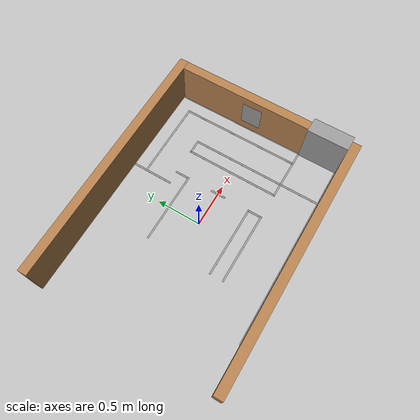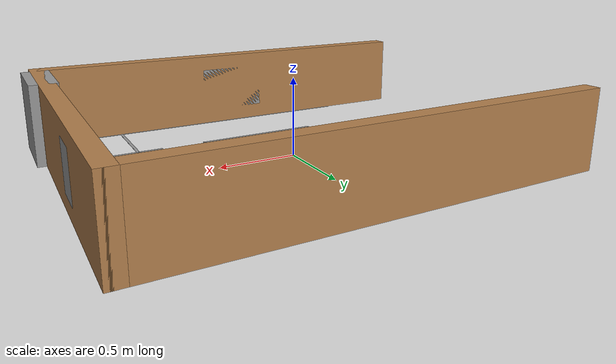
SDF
<sdf version="1.6">
 <model name="Map_2.0_0">
  <link name="Door_4">
   <pose>1.37 -0.75 0 0 -0 1.57314</pose>
   <visual name="Door_4_Visual">
    <pose>0 0 0.25 0 -0 0</pose>
    <geometry><box><size>0.45 0.17 0.5</size></box></geometry>
    <material>
     <script><uri>file://media/materials/scripts/gazebo.material</uri><name>Gazebo/Grey</name></script>
     <shader type="pixel"/>
     <ambient>0.3 0.3 0.3 1</ambient>
     <diffuse>0.7 0.7 0.7 1</diffuse>
     <specular>0.01 0.01 0.01 1</specular>
     <emissive>0 0 0 1</emissive>
    </material>
   </visual>
   <collision name="Door_4_Collision">
    <pose>0 0 0.25 0 -0 0</pose>
    <geometry><box><size>0.45 0.17 0.5</size></box></geometry>
    <surface>
     <friction>
      <ode><mu>1</mu><mu2>1</mu2><fdir1>0 0 0</fdir1><slip1>0</slip1><slip2>0</slip2></ode>
      <torsional>
       <coefficient>1</coefficient>
       <patch_radius>0</patch_radius>
       <surface_radius>0</surface_radius>
       <use_patch_radius>1</use_patch_radius>
       <ode><slip>0</slip></ode>
      </torsional>
     </friction>
     <bounce><restitution_coefficient>0</restitution_coefficient><threshold>1e+06</threshold></bounce>
     <contact>
      <collide_without_contact>0</collide_without_contact>
      <collide_without_contact_bitmask>1</collide_without_contact_bitmask>
      <collide_bitmask>1</collide_bitmask>
      <ode>
       <soft_cfm>0</soft_cfm>
       <soft_erp>0.2</soft_erp>
       <kp>1e+13</kp>
       <kd>1</kd>
       <max_vel>0.01</max_vel>
       <min_depth>0</min_depth>
      </ode>
      <bullet>
       <split_impulse>1</split_impulse>
       <split_impulse_penetration_threshold>-0.01</split_impulse_penetration_threshold>
       <soft_cfm>0</soft_cfm>
       <soft_erp>0.2</soft_erp>
       <kp>1e+13</kp>
       <kd>1</kd>
      </bullet>
     </contact>
    </surface>
   </collision>
  </link>
  <link name="Wall_27">
   <pose>0.225 -0.975 0 0 -0 0</pose>
   <visual name="Wall_27_Visual">
    <geometry><box><size>2.17 0.02 0.001</size></box></geometry>
    <material>
     <script><uri>file://media/materials/scripts/gazebo.material</uri><name>Gazebo/Grey</name></script>
     <ambient>1 1 1 1</ambient>
     <shader type="pixel"/>
     <diffuse>0.7 0.7 0.7 1</diffuse>
     <specular>0.01 0.01 0.01 1</specular>
     <emissive>0 0 0 1</emissive>
    </material>
    <meta><layer>0</layer></meta>
   </visual>
   <collision name="Wall_27_Collision">
    <geometry><box><size>2.17 0.02 0.001</size></box></geometry>
    <surface>
     <friction>
      <ode><mu>1</mu><mu2>1</mu2><fdir1>0 0 0</fdir1><slip1>0</slip1><slip2>0</slip2></ode>
      <torsional>
       <coefficient>1</coefficient>
       <patch_radius>0</patch_radius>
       <surface_radius>0</surface_radius>
       <use_patch_radius>1</use_patch_radius>
       <ode><slip>0</slip></ode>
      </torsional>
     </friction>
     <bounce><restitution_coefficient>0</restitution_coefficient><threshold>1e+06</threshold></bounce>
     <contact>
      <collide_without_contact>0</collide_without_contact>
      <collide_without_contact_bitmask>1</collide_without_contact_bitmask>
      <collide_bitmask>1</collide_bitmask>
      <ode>
       <soft_cfm>0</soft_cfm>
       <soft_erp>0.2</soft_erp>
       <kp>1e+13</kp>
       <kd>1</kd>
       <max_vel>0.01</max_vel>
       <min_depth>0</min_depth>
      </ode>
      <bullet>
       <split_impulse>1</split_impulse>
       <split_impulse_penetration_threshold>-0.01</split_impulse_penetration_threshold>
       <soft_cfm>0</soft_cfm>
       <soft_erp>0.2</soft_erp>
       <kp>1e+13</kp>
       <kd>1</kd>
      </bullet>
     </contact>
    </surface>
   </collision>
  </link>
  <link name="Wall_39">
   <pose>0.4 0.45 0 0 0 -1.5708</pose>
   <visual name="Wall_39_Visual">
    <geometry><box><size>0.17 0.02 0.001</size></box></geometry>
    <material>
     <script><uri>file://media/materials/scripts/gazebo.material</uri><name>Gazebo/Grey</name></script>
     <ambient>1 1 1 1</ambient>
     <shader type="pixel"/>
     <diffuse>0.7 0.7 0.7 1</diffuse>
     <specular>0.01 0.01 0.01 1</specular>
     <emissive>0 0 0 1</emissive>
    </material>
    <meta><layer>0</layer></meta>
   </visual>
   <collision name="Wall_39_Collision">
    <geometry><box><size>0.17 0.02 0.001</size></box></geometry>
    <surface>
     <friction>
      <ode><mu>1</mu><mu2>1</mu2><fdir1>0 0 0</fdir1><slip1>0</slip1><slip2>0</slip2></ode>
      <torsional>
       <coefficient>1</coefficient>
       <patch_radius>0</patch_radius>
       <surface_radius>0</surface_radius>
       <use_patch_radius>1</use_patch_radius>
       <ode><slip>0</slip></ode>
      </torsional>
     </friction>
     <bounce><restitution_coefficient>0</restitution_coefficient><threshold>1e+06</threshold></bounce>
     <contact>
      <collide_without_contact>0</collide_without_contact>
      <collide_without_contact_bitmask>1</collide_without_contact_bitmask>
      <collide_bitmask>1</collide_bitmask>
      <ode>
       <soft_cfm>0</soft_cfm>
       <soft_erp>0.2</soft_erp>
       <kp>1e+13</kp>
       <kd>1</kd>
       <max_vel>0.01</max_vel>
       <min_depth>0</min_depth>
      </ode>
      <bullet>
       <split_impulse>1</split_impulse>
       <split_impulse_penetration_threshold>-0.01</split_impulse_penetration_threshold>
       <soft_cfm>0</soft_cfm>
       <soft_erp>0.2</soft_erp>
       <kp>1e+13</kp>
       <kd>1</kd>
      </bullet>
     </contact>
    </surface>
   </collision>
  </link>
  <link name="Wall_47">
   <pose>0 0.375 0 0 -0 0</pose>
   <visual name="Wall_47_Visual">
    <geometry><box><size>0.82 0.02 0.001</size></box></geometry>
    <material>
     <script><uri>file://media/materials/scripts/gazebo.material</uri><name>Gazebo/Grey</name></script>
     <ambient>1 1 1 1</ambient>
     <shader type="pixel"/>
     <diffuse>0.7 0.7 0.7 1</diffuse>
     <specular>0.01 0.01 0.01 1</specular>
     <emissive>0 0 0 1</emissive>
    </material>
    <meta><layer>0</layer></meta>
   </visual>
   <collision name="Wall_47_Collision">
    <geometry><box><size>0.82 0.02 0.001</size></box></geometry>
    <surface>
     <friction>
      <ode><mu>1</mu><mu2>1</mu2><fdir1>0 0 0</fdir1><slip1>0</slip1><slip2>0</slip2></ode>
      <torsional>
       <coefficient>1</coefficient>
       <patch_radius>0</patch_radius>
       <surface_radius>0</surface_radius>
       <use_patch_radius>1</use_patch_radius>
       <ode><slip>0</slip></ode>
      </torsional>
     </friction>
     <bounce><restitution_coefficient>0</restitution_coefficient><threshold>1e+06</threshold></bounce>
     <contact>
      <collide_without_contact>0</collide_without_contact>
      <collide_without_contact_bitmask>1</collide_without_contact_bitmask>
      <collide_bitmask>1</collide_bitmask>
      <ode>
       <soft_cfm>0</soft_cfm>
       <soft_erp>0.2</soft_erp>
       <kp>1e+13</kp>
       <kd>1</kd>
       <max_vel>0.01</max_vel>
       <min_depth>0</min_depth>
      </ode>
      <bullet>
       <split_impulse>1</split_impulse>
       <split_impulse_penetration_threshold>-0.01</split_impulse_penetration_threshold>
       <soft_cfm>0</soft_cfm>
       <soft_erp>0.2</soft_erp>
       <kp>1e+13</kp>
       <kd>1</kd>
      </bullet>
     </contact>
    </surface>
   </collision>
  </link>
  <link name="Wall_51">
   <pose>0.4 0 0 0 0 -1.5708</pose>
   <visual name="Wall_51_Visual">
    <geometry><box><size>0.17 0.02 0.001</size></box></geometry>
    <material>
     <script><uri>file://media/materials/scripts/gazebo.material</uri><name>Gazebo/Grey</name></script>
     <ambient>1 1 1 1</ambient>
     <shader type="pixel"/>
     <diffuse>0.7 0.7 0.7 1</diffuse>
     <specular>0.01 0.01 0.01 1</specular>
     <emissive>0 0 0 1</emissive>
    </material>
    <meta><layer>0</layer></meta>
   </visual>
   <collision name="Wall_51_Collision">
    <geometry><box><size>0.17 0.02 0.001</size></box></geometry>
    <surface>
     <friction>
      <ode><mu>1</mu><mu2>1</mu2><fdir1>0 0 0</fdir1><slip1>0</slip1><slip2>0</slip2></ode>
      <torsional>
       <coefficient>1</coefficient>
       <patch_radius>0</patch_radius>
       <surface_radius>0</surface_radius>
       <use_patch_radius>1</use_patch_radius>
       <ode><slip>0</slip></ode>
      </torsional>
     </friction>
     <bounce><restitution_coefficient>0</restitution_coefficient><threshold>1e+06</threshold></bounce>
     <contact>
      <collide_without_contact>0</collide_without_contact>
      <collide_without_contact_bitmask>1</collide_without_contact_bitmask>
      <collide_bitmask>1</collide_bitmask>
      <ode>
       <soft_cfm>0</soft_cfm>
       <soft_erp>0.2</soft_erp>
       <kp>1e+13</kp>
       <kd>1</kd>
       <max_vel>0.01</max_vel>
       <min_depth>0</min_depth>
      </ode>
      <bullet>
       <split_impulse>1</split_impulse>
       <split_impulse_penetration_threshold>-0.01</split_impulse_penetration_threshold>
       <soft_cfm>0</soft_cfm>
       <soft_erp>0.2</soft_erp>
       <kp>1e+13</kp>
       <kd>1</kd>
      </bullet>
     </contact>
    </surface>
   </collision>
  </link>
  <link name="Wall_53">
   <pose>0 -0.375 0 0 -0 0</pose>
   <visual name="Wall_53_Visual">
    <geometry><box><size>0.82 0.02 0.001</size></box></geometry>
    <material>
     <script><uri>file://media/materials/scripts/gazebo.material</uri><name>Gazebo/Grey</name></script>
     <ambient>1 1 1 1</ambient>
     <shader type="pixel"/>
     <diffuse>0.7 0.7 0.7 1</diffuse>
     <specular>0.01 0.01 0.01 1</specular>
     <emissive>0 0 0 1</emissive>
    </material>
    <meta><layer>0</layer></meta>
   </visual>
   <collision name="Wall_53_Collision">
    <geometry><box><size>0.82 0.02 0.001</size></box></geometry>
    <surface>
     <friction>
      <ode><mu>1</mu><mu2>1</mu2><fdir1>0 0 0</fdir1><slip1>0</slip1><slip2>0</slip2></ode>
      <torsional>
       <coefficient>1</coefficient>
       <patch_radius>0</patch_radius>
       <surface_radius>0</surface_radius>
       <use_patch_radius>1</use_patch_radius>
       <ode><slip>0</slip></ode>
      </torsional>
     </friction>
     <bounce><restitution_coefficient>0</restitution_coefficient><threshold>1e+06</threshold></bounce>
     <contact>
      <collide_without_contact>0</collide_without_contact>
      <collide_without_contact_bitmask>1</collide_without_contact_bitmask>
      <collide_bitmask>1</collide_bitmask>
      <ode>
       <soft_cfm>0</soft_cfm>
       <soft_erp>0.2</soft_erp>
       <kp>1e+13</kp>
       <kd>1</kd>
       <max_vel>0.01</max_vel>
       <min_depth>0</min_depth>
      </ode>
      <bullet>
       <split_impulse>1</split_impulse>
       <split_impulse_penetration_threshold>-0.01</split_impulse_penetration_threshold>
       <soft_cfm>0</soft_cfm>
       <soft_erp>0.2</soft_erp>
       <kp>1e+13</kp>
       <kd>1</kd>
      </bullet>
     </contact>
    </surface>
   </collision>
  </link>
  <link name="Wall_55">
   <pose>0 -0.525 0 0 -0 0</pose>
   <visual name="Wall_55_Visual">
    <geometry><box><size>0.82 0.02 0.001</size></box></geometry>
    <material>
     <script><uri>file://media/materials/scripts/gazebo.material</uri><name>Gazebo/Grey</name></script>
     <ambient>1 1 1 1</ambient>
     <shader type="pixel"/>
     <diffuse>0.7 0.7 0.7 1</diffuse>
     <specular>0.01 0.01 0.01 1</specular>
     <emissive>0 0 0 1</emissive>
    </material>
    <meta><layer>0</layer></meta>
   </visual>
   <collision name="Wall_55_Collision">
    <geometry><box><size>0.82 0.02 0.001</size></box></geometry>
    <surface>
     <friction>
      <ode><mu>1</mu><mu2>1</mu2><fdir1>0 0 0</fdir1><slip1>0</slip1><slip2>0</slip2></ode>
      <torsional>
       <coefficient>1</coefficient>
       <patch_radius>0</patch_radius>
       <surface_radius>0</surface_radius>
       <use_patch_radius>1</use_patch_radius>
       <ode><slip>0</slip></ode>
      </torsional>
     </friction>
     <bounce><restitution_coefficient>0</restitution_coefficient><threshold>1e+06</threshold></bounce>
     <contact>
      <collide_without_contact>0</collide_without_contact>
      <collide_without_contact_bitmask>1</collide_without_contact_bitmask>
      <collide_bitmask>1</collide_bitmask>
      <ode>
       <soft_cfm>0</soft_cfm>
       <soft_erp>0.2</soft_erp>
       <kp>1e+13</kp>
       <kd>1</kd>
       <max_vel>0.01</max_vel>
       <min_depth>0</min_depth>
      </ode>
      <bullet>
       <split_impulse>1</split_impulse>
       <split_impulse_penetration_threshold>-0.01</split_impulse_penetration_threshold>
       <soft_cfm>0</soft_cfm>
       <soft_erp>0.2</soft_erp>
       <kp>1e+13</kp>
       <kd>1</kd>
      </bullet>
     </contact>
    </surface>
   </collision>
  </link>
  <link name="Wall_59">
   <pose>0.4 -0.45 0 0 0 -1.5708</pose>
   <visual name="Wall_59_Visual">
    <geometry><box><size>0.17 0.02 0.001</size></box></geometry>
    <material>
     <script><uri>file://media/materials/scripts/gazebo.material</uri><name>Gazebo/Grey</name></script>
     <ambient>1 1 1 1</ambient>
     <shader type="pixel"/>
     <diffuse>0.7 0.7 0.7 1</diffuse>
     <specular>0.01 0.01 0.01 1</specular>
     <emissive>0 0 0 1</emissive>
    </material>
    <meta><layer>0</layer></meta>
   </visual>
   <collision name="Wall_59_Collision">
    <geometry><box><size>0.17 0.02 0.001</size></box></geometry>
    <surface>
     <friction>
      <ode><mu>1</mu><mu2>1</mu2><fdir1>0 0 0</fdir1><slip1>0</slip1><slip2>0</slip2></ode>
      <torsional>
       <coefficient>1</coefficient>
       <patch_radius>0</patch_radius>
       <surface_radius>0</surface_radius>
       <use_patch_radius>1</use_patch_radius>
       <ode><slip>0</slip></ode>
      </torsional>
     </friction>
     <bounce><restitution_coefficient>0</restitution_coefficient><threshold>1e+06</threshold></bounce>
     <contact>
      <collide_without_contact>0</collide_without_contact>
      <collide_without_contact_bitmask>1</collide_without_contact_bitmask>
      <collide_bitmask>1</collide_bitmask>
      <ode>
       <soft_cfm>0</soft_cfm>
       <soft_erp>0.2</soft_erp>
       <kp>1e+13</kp>
       <kd>1</kd>
       <max_vel>0.01</max_vel>
       <min_depth>0</min_depth>
      </ode>
      <bullet>
       <split_impulse>1</split_impulse>
       <split_impulse_penetration_threshold>-0.01</split_impulse_penetration_threshold>
       <soft_cfm>0</soft_cfm>
       <soft_erp>0.2</soft_erp>
       <kp>1e+13</kp>
       <kd>1</kd>
      </bullet>
     </contact>
    </surface>
   </collision>
  </link>
  <link name="Wall_61">
   <pose>1.3 0 0 0 0 -1.5708</pose>
   <visual name="Wall_61_Visual">
    <geometry><box><size>1.97 0.02 0.001</size></box></geometry>
    <material>
     <script><uri>file://media/materials/scripts/gazebo.material</uri><name>Gazebo/Grey</name></script>
     <ambient>1 1 1 1</ambient>
     <shader type="pixel"/>
     <diffuse>0.7 0.7 0.7 1</diffuse>
     <specular>0.01 0.01 0.01 1</specular>
     <emissive>0 0 0 1</emissive>
    </material>
    <meta><layer>0</layer></meta>
   </visual>
   <collision name="Wall_61_Collision">
    <geometry><box><size>1.97 0.02 0.001</size></box></geometry>
    <surface>
     <friction>
      <ode><mu>1</mu><mu2>1</mu2><fdir1>0 0 0</fdir1><slip1>0</slip1><slip2>0</slip2></ode>
      <torsional>
       <coefficient>1</coefficient>
       <patch_radius>0</patch_radius>
       <surface_radius>0</surface_radius>
       <use_patch_radius>1</use_patch_radius>
       <ode><slip>0</slip></ode>
      </torsional>
     </friction>
     <bounce><restitution_coefficient>0</restitution_coefficient><threshold>1e+06</threshold></bounce>
     <contact>
      <collide_without_contact>0</collide_without_contact>
      <collide_without_contact_bitmask>1</collide_without_contact_bitmask>
      <collide_bitmask>1</collide_bitmask>
      <ode>
       <soft_cfm>0</soft_cfm>
       <soft_erp>0.2</soft_erp>
       <kp>1e+13</kp>
       <kd>1</kd>
       <max_vel>0.01</max_vel>
       <min_depth>0</min_depth>
      </ode>
      <bullet>
       <split_impulse>1</split_impulse>
       <split_impulse_penetration_threshold>-0.01</split_impulse_penetration_threshold>
       <soft_cfm>0</soft_cfm>
       <soft_erp>0.2</soft_erp>
       <kp>1e+13</kp>
       <kd>1</kd>
      </bullet>
     </contact>
    </surface>
   </collision>
  </link>
  <link name="Wall_63">
   <pose>0.25 0.75 0 0 0 -1.5708</pose>
   <visual name="Wall_63_Visual">
    <geometry><box><size>0.47 0.02 0.001</size></box></geometry>
    <material>
     <script><uri>file://media/materials/scripts/gazebo.material</uri><name>Gazebo/Grey</name></script>
     <ambient>1 1 1 1</ambient>
     <shader type="pixel"/>
     <diffuse>0.7 0.7 0.7 1</diffuse>
     <specular>0.01 0.01 0.01 1</specular>
     <emissive>0 0 0 1</emissive>
    </material>
    <meta><layer>0</layer></meta>
   </visual>
   <collision name="Wall_63_Collision">
    <geometry><box><size>0.47 0.02 0.001</size></box></geometry>
    <surface>
     <friction>
      <ode><mu>1</mu><mu2>1</mu2><fdir1>0 0 0</fdir1><slip1>0</slip1><slip2>0</slip2></ode>
      <torsional>
       <coefficient>1</coefficient>
       <patch_radius>0</patch_radius>
       <surface_radius>0</surface_radius>
       <use_patch_radius>1</use_patch_radius>
       <ode><slip>0</slip></ode>
      </torsional>
     </friction>
     <bounce><restitution_coefficient>0</restitution_coefficient><threshold>1e+06</threshold></bounce>
     <contact>
      <collide_without_contact>0</collide_without_contact>
      <collide_without_contact_bitmask>1</collide_without_contact_bitmask>
      <collide_bitmask>1</collide_bitmask>
      <ode>
       <soft_cfm>0</soft_cfm>
       <soft_erp>0.2</soft_erp>
       <kp>1e+13</kp>
       <kd>1</kd>
       <max_vel>0.01</max_vel>
       <min_depth>0</min_depth>
      </ode>
      <bullet>
       <split_impulse>1</split_impulse>
       <split_impulse_penetration_threshold>-0.01</split_impulse_penetration_threshold>
       <soft_cfm>0</soft_cfm>
       <soft_erp>0.2</soft_erp>
       <kp>1e+13</kp>
       <kd>1</kd>
      </bullet>
     </contact>
    </surface>
   </collision>
  </link>
  <link name="Wall_65">
   <pose>0.7 0.825 0 0 -0 0</pose>
   <visual name="Wall_65_Visual">
    <geometry><box><size>0.92 0.02 0.001</size></box></geometry>
    <material>
     <script><uri>file://media/materials/scripts/gazebo.material</uri><name>Gazebo/Grey</name></script>
     <ambient>1 1 1 1</ambient>
     <shader type="pixel"/>
     <diffuse>0.7 0.7 0.7 1</diffuse>
     <specular>0.01 0.01 0.01 1</specular>
     <emissive>0 0 0 1</emissive>
    </material>
    <meta><layer>0</layer></meta>
   </visual>
   <collision name="Wall_65_Collision">
    <geometry><box><size>0.92 0.02 0.001</size></box></geometry>
    <surface>
     <friction>
      <ode><mu>1</mu><mu2>1</mu2><fdir1>0 0 0</fdir1><slip1>0</slip1><slip2>0</slip2></ode>
      <torsional>
       <coefficient>1</coefficient>
       <patch_radius>0</patch_radius>
       <surface_radius>0</surface_radius>
       <use_patch_radius>1</use_patch_radius>
       <ode><slip>0</slip></ode>
      </torsional>
     </friction>
     <bounce><restitution_coefficient>0</restitution_coefficient><threshold>1e+06</threshold></bounce>
     <contact>
      <collide_without_contact>0</collide_without_contact>
      <collide_without_contact_bitmask>1</collide_without_contact_bitmask>
      <collide_bitmask>1</collide_bitmask>
      <ode>
       <soft_cfm>0</soft_cfm>
       <soft_erp>0.2</soft_erp>
       <kp>1e+13</kp>
       <kd>1</kd>
       <max_vel>0.01</max_vel>
       <min_depth>0</min_depth>
      </ode>
      <bullet>
       <split_impulse>1</split_impulse>
       <split_impulse_penetration_threshold>-0.01</split_impulse_penetration_threshold>
       <soft_cfm>0</soft_cfm>
       <soft_erp>0.2</soft_erp>
       <kp>1e+13</kp>
       <kd>1</kd>
      </bullet>
     </contact>
    </surface>
   </collision>
  </link>
  <link name="Wall_67">
   <pose>1.15 0.15 0 0 0 -1.5708</pose>
   <visual name="Wall_67_Visual">
    <geometry><box><size>1.37 0.02 0.001</size></box></geometry>
    <material>
     <script><uri>file://media/materials/scripts/gazebo.material</uri><name>Gazebo/Grey</name></script>
     <ambient>1 1 1 1</ambient>
     <shader type="pixel"/>
     <diffuse>0.7 0.7 0.7 1</diffuse>
     <specular>0.01 0.01 0.01 1</specular>
     <emissive>0 0 0 1</emissive>
    </material>
    <meta><layer>0</layer></meta>
   </visual>
   <collision name="Wall_67_Collision">
    <geometry><box><size>1.37 0.02 0.001</size></box></geometry>
    <surface>
     <friction>
      <ode><mu>1</mu><mu2>1</mu2><fdir1>0 0 0</fdir1><slip1>0</slip1><slip2>0</slip2></ode>
      <torsional>
       <coefficient>1</coefficient>
       <patch_radius>0</patch_radius>
       <surface_radius>0</surface_radius>
       <use_patch_radius>1</use_patch_radius>
       <ode><slip>0</slip></ode>
      </torsional>
     </friction>
     <bounce><restitution_coefficient>0</restitution_coefficient><threshold>1e+06</threshold></bounce>
     <contact>
      <collide_without_contact>0</collide_without_contact>
      <collide_without_contact_bitmask>1</collide_without_contact_bitmask>
      <collide_bitmask>1</collide_bitmask>
      <ode>
       <soft_cfm>0</soft_cfm>
       <soft_erp>0.2</soft_erp>
       <kp>1e+13</kp>
       <kd>1</kd>
       <max_vel>0.01</max_vel>
       <min_depth>0</min_depth>
      </ode>
      <bullet>
       <split_impulse>1</split_impulse>
       <split_impulse_penetration_threshold>-0.01</split_impulse_penetration_threshold>
       <soft_cfm>0</soft_cfm>
       <soft_erp>0.2</soft_erp>
       <kp>1e+13</kp>
       <kd>1</kd>
      </bullet>
     </contact>
    </surface>
   </collision>
  </link>
  <link name="Wall_69">
   <pose>0.85 -0.75 0 0 -0 1.5708</pose>
   <visual name="Wall_69_Visual">
    <geometry><box><size>0.47 0.02 0.001</size></box></geometry>
    <material>
     <script><uri>file://media/materials/scripts/gazebo.material</uri><name>Gazebo/Grey</name></script>
     <ambient>1 1 1 1</ambient>
     <shader type="pixel"/>
     <diffuse>0.7 0.7 0.7 1</diffuse>
     <specular>0.01 0.01 0.01 1</specular>
     <emissive>0 0 0 1</emissive>
    </material>
    <meta><layer>0</layer></meta>
   </visual>
   <collision name="Wall_69_Collision">
    <geometry><box><size>0.47 0.02 0.001</size></box></geometry>
    <surface>
     <friction>
      <ode><mu>1</mu><mu2>1</mu2><fdir1>0 0 0</fdir1><slip1>0</slip1><slip2>0</slip2></ode>
      <torsional>
       <coefficient>1</coefficient>
       <patch_radius>0</patch_radius>
       <surface_radius>0</surface_radius>
       <use_patch_radius>1</use_patch_radius>
       <ode><slip>0</slip></ode>
      </torsional>
     </friction>
     <bounce><restitution_coefficient>0</restitution_coefficient><threshold>1e+06</threshold></bounce>
     <contact>
      <collide_without_contact>0</collide_without_contact>
      <collide_without_contact_bitmask>1</collide_without_contact_bitmask>
      <collide_bitmask>1</collide_bitmask>
      <ode>
       <soft_cfm>0</soft_cfm>
       <soft_erp>0.2</soft_erp>
       <kp>1e+13</kp>
       <kd>1</kd>
       <max_vel>0.01</max_vel>
       <min_depth>0</min_depth>
      </ode>
      <bullet>
       <split_impulse>1</split_impulse>
       <split_impulse_penetration_threshold>-0.01</split_impulse_penetration_threshold>
       <soft_cfm>0</soft_cfm>
       <soft_erp>0.2</soft_erp>
       <kp>1e+13</kp>
       <kd>1</kd>
      </bullet>
     </contact>
    </surface>
   </collision>
  </link>
  <link name="Wall_73">
   <pose>1.075 -0.525 0 0 -0 0</pose>
   <visual name="Wall_73_Visual">
    <geometry><box><size>0.47 0.02 0.001</size></box></geometry>
    <material>
     <script><uri>file://media/materials/scripts/gazebo.material</uri><name>Gazebo/Grey</name></script>
     <ambient>1 1 1 1</ambient>
     <shader type="pixel"/>
     <diffuse>0.7 0.7 0.7 1</diffuse>
     <specular>0.01 0.01 0.01 1</specular>
     <emissive>0 0 0 1</emissive>
    </material>
    <meta><layer>0</layer></meta>
   </visual>
   <collision name="Wall_73_Collision">
    <geometry><box><size>0.47 0.02 0.001</size></box></geometry>
    <surface>
     <friction>
      <ode><mu>1</mu><mu2>1</mu2><fdir1>0 0 0</fdir1><slip1>0</slip1><slip2>0</slip2></ode>
      <torsional>
       <coefficient>1</coefficient>
       <patch_radius>0</patch_radius>
       <surface_radius>0</surface_radius>
       <use_patch_radius>1</use_patch_radius>
       <ode><slip>0</slip></ode>
      </torsional>
     </friction>
     <bounce><restitution_coefficient>0</restitution_coefficient><threshold>1e+06</threshold></bounce>
     <contact>
      <collide_without_contact>0</collide_without_contact>
      <collide_without_contact_bitmask>1</collide_without_contact_bitmask>
      <collide_bitmask>1</collide_bitmask>
      <ode>
       <soft_cfm>0</soft_cfm>
       <soft_erp>0.2</soft_erp>
       <kp>1e+13</kp>
       <kd>1</kd>
       <max_vel>0.01</max_vel>
       <min_depth>0</min_depth>
      </ode>
      <bullet>
       <split_impulse>1</split_impulse>
       <split_impulse_penetration_threshold>-0.01</split_impulse_penetration_threshold>
       <soft_cfm>0</soft_cfm>
       <soft_erp>0.2</soft_erp>
       <kp>1e+13</kp>
       <kd>1</kd>
      </bullet>
     </contact>
    </surface>
   </collision>
  </link>
  <link name="Wall_75">
   <pose>0.7 0 0 0 0 -1.5708</pose>
   <visual name="Wall_75_Visual">
    <geometry><box><size>1.07 0.02 0.001</size></box></geometry>
    <material>
     <script><uri>file://media/materials/scripts/gazebo.material</uri><name>Gazebo/Grey</name></script>
     <ambient>1 1 1 1</ambient>
     <shader type="pixel"/>
     <diffuse>0.7 0.7 0.7 1</diffuse>
     <specular>0.01 0.01 0.01 1</specular>
     <emissive>0 0 0 1</emissive>
    </material>
    <meta><layer>0</layer></meta>
   </visual>
   <collision name="Wall_75_Collision">
    <geometry><box><size>1.07 0.02 0.001</size></box></geometry>
    <surface>
     <friction>
      <ode><mu>1</mu><mu2>1</mu2><fdir1>0 0 0</fdir1><slip1>0</slip1><slip2>0</slip2></ode>
      <torsional>
       <coefficient>1</coefficient>
       <patch_radius>0</patch_radius>
       <surface_radius>0</surface_radius>
       <use_patch_radius>1</use_patch_radius>
       <ode><slip>0</slip></ode>
      </torsional>
     </friction>
     <bounce><restitution_coefficient>0</restitution_coefficient><threshold>1e+06</threshold></bounce>
     <contact>
      <collide_without_contact>0</collide_without_contact>
      <collide_without_contact_bitmask>1</collide_without_contact_bitmask>
      <collide_bitmask>1</collide_bitmask>
      <ode>
       <soft_cfm>0</soft_cfm>
       <soft_erp>0.2</soft_erp>
       <kp>1e+13</kp>
       <kd>1</kd>
       <max_vel>0.01</max_vel>
       <min_depth>0</min_depth>
      </ode>
      <bullet>
       <split_impulse>1</split_impulse>
       <split_impulse_penetration_threshold>-0.01</split_impulse_penetration_threshold>
       <soft_cfm>0</soft_cfm>
       <soft_erp>0.2</soft_erp>
       <kp>1e+13</kp>
       <kd>1</kd>
      </bullet>
     </contact>
    </surface>
   </collision>
  </link>
  <link name="Wall_77">
   <pose>0.85 0 0 0 0 -1.5708</pose>
   <visual name="Wall_77_Visual">
    <geometry><box><size>1.07 0.02 0.001</size></box></geometry>
    <material>
     <script><uri>file://media/materials/scripts/gazebo.material</uri><name>Gazebo/Grey</name></script>
     <ambient>1 1 1 1</ambient>
     <shader type="pixel"/>
     <diffuse>0.7 0.7 0.7 1</diffuse>
     <specular>0.01 0.01 0.01 1</specular>
     <emissive>0 0 0 1</emissive>
    </material>
    <meta><layer>0</layer></meta>
   </visual>
   <collision name="Wall_77_Collision">
    <geometry><box><size>1.07 0.02 0.001</size></box></geometry>
    <surface>
     <friction>
      <ode><mu>1</mu><mu2>1</mu2><fdir1>0 0 0</fdir1><slip1>0</slip1><slip2>0</slip2></ode>
      <torsional>
       <coefficient>1</coefficient>
       <patch_radius>0</patch_radius>
       <surface_radius>0</surface_radius>
       <use_patch_radius>1</use_patch_radius>
       <ode><slip>0</slip></ode>
      </torsional>
     </friction>
     <bounce><restitution_coefficient>0</restitution_coefficient><threshold>1e+06</threshold></bounce>
     <contact>
      <collide_without_contact>0</collide_without_contact>
      <collide_without_contact_bitmask>1</collide_without_contact_bitmask>
      <collide_bitmask>1</collide_bitmask>
      <ode>
       <soft_cfm>0</soft_cfm>
       <soft_erp>0.2</soft_erp>
       <kp>1e+13</kp>
       <kd>1</kd>
       <max_vel>0.01</max_vel>
       <min_depth>0</min_depth>
      </ode>
      <bullet>
       <split_impulse>1</split_impulse>
       <split_impulse_penetration_threshold>-0.01</split_impulse_penetration_threshold>
       <soft_cfm>0</soft_cfm>
       <soft_erp>0.2</soft_erp>
       <kp>1e+13</kp>
       <kd>1</kd>
      </bullet>
     </contact>
    </surface>
   </collision>
  </link>
  <link name="Wall_79">
   <pose>0.775 0.525 0 0 -0 0</pose>
   <visual name="Wall_79_Visual">
    <geometry><box><size>0.17 0.02 0.001</size></box></geometry>
    <material>
     <script><uri>file://media/materials/scripts/gazebo.material</uri><name>Gazebo/Grey</name></script>
     <ambient>1 1 1 1</ambient>
     <shader type="pixel"/>
     <diffuse>0.7 0.7 0.7 1</diffuse>
     <specular>0.01 0.01 0.01 1</specular>
     <emissive>0 0 0 1</emissive>
    </material>
    <meta><layer>0</layer></meta>
   </visual>
   <collision name="Wall_79_Collision">
    <geometry><box><size>0.17 0.02 0.001</size></box></geometry>
    <surface>
     <friction>
      <ode><mu>1</mu><mu2>1</mu2><fdir1>0 0 0</fdir1><slip1>0</slip1><slip2>0</slip2></ode>
      <torsional>
       <coefficient>1</coefficient>
       <patch_radius>0</patch_radius>
       <surface_radius>0</surface_radius>
       <use_patch_radius>1</use_patch_radius>
       <ode><slip>0</slip></ode>
      </torsional>
     </friction>
     <bounce><restitution_coefficient>0</restitution_coefficient><threshold>1e+06</threshold></bounce>
     <contact>
      <collide_without_contact>0</collide_without_contact>
      <collide_without_contact_bitmask>1</collide_without_contact_bitmask>
      <collide_bitmask>1</collide_bitmask>
      <ode>
       <soft_cfm>0</soft_cfm>
       <soft_erp>0.2</soft_erp>
       <kp>1e+13</kp>
       <kd>1</kd>
       <max_vel>0.01</max_vel>
       <min_depth>0</min_depth>
      </ode>
      <bullet>
       <split_impulse>1</split_impulse>
       <split_impulse_penetration_threshold>-0.01</split_impulse_penetration_threshold>
       <soft_cfm>0</soft_cfm>
       <soft_erp>0.2</soft_erp>
       <kp>1e+13</kp>
       <kd>1</kd>
      </bullet>
     </contact>
    </surface>
   </collision>
  </link>
  <link name="Wall_81">
   <pose>0.775 -0.525 0 0 -0 0</pose>
   <visual name="Wall_81_Visual">
    <geometry><box><size>0.17 0.02 0.001</size></box></geometry>
    <material>
     <script><uri>file://media/materials/scripts/gazebo.material</uri><name>Gazebo/Grey</name></script>
     <ambient>1 1 1 1</ambient>
     <shader type="pixel"/>
     <diffuse>0.7 0.7 0.7 1</diffuse>
     <specular>0.01 0.01 0.01 1</specular>
     <emissive>0 0 0 1</emissive>
    </material>
    <meta><layer>0</layer></meta>
   </visual>
   <collision name="Wall_81_Collision">
    <geometry><box><size>0.17 0.02 0.001</size></box></geometry>
    <surface>
     <friction>
      <ode><mu>1</mu><mu2>1</mu2><fdir1>0 0 0</fdir1><slip1>0</slip1><slip2>0</slip2></ode>
      <torsional>
       <coefficient>1</coefficient>
       <patch_radius>0</patch_radius>
       <surface_radius>0</surface_radius>
       <use_patch_radius>1</use_patch_radius>
       <ode><slip>0</slip></ode>
      </torsional>
     </friction>
     <bounce><restitution_coefficient>0</restitution_coefficient><threshold>1e+06</threshold></bounce>
     <contact>
      <collide_without_contact>0</collide_without_contact>
      <collide_without_contact_bitmask>1</collide_without_contact_bitmask>
      <collide_bitmask>1</collide_bitmask>
      <ode>
       <soft_cfm>0</soft_cfm>
       <soft_erp>0.2</soft_erp>
       <kp>1e+13</kp>
       <kd>1</kd>
       <max_vel>0.01</max_vel>
       <min_depth>0</min_depth>
      </ode>
      <bullet>
       <split_impulse>1</split_impulse>
       <split_impulse_penetration_threshold>-0.01</split_impulse_penetration_threshold>
       <soft_cfm>0</soft_cfm>
       <soft_erp>0.2</soft_erp>
       <kp>1e+13</kp>
       <kd>1</kd>
      </bullet>
     </contact>
    </surface>
   </collision>
  </link>
  <link name="Wall_85">
   <pose>0 -1.025 0 0 -0 0</pose>
   <inertial>
    <mass>1</mass>
    <inertia><ixx>1</ixx><ixy>0</ixy><ixz>0</ixz><iyy>1</iyy><iyz>0</iyz><izz>1</izz></inertia>
   </inertial>
   <visual name="Wall_85_Visual">
    <pose>0 0 0.25 0 -0 0</pose>
    <geometry><box><size>2.8 0.1 0.5</size></box></geometry>
    <material>
     <script><uri>file://media/materials/scripts/gazebo.material</uri><name>Gazebo/Wood</name></script>
     <ambient>1 1 1 1</ambient>
     <shader type="pixel"><normal_map>__default__</normal_map></shader>
     <diffuse>0.7 0.7 0.7 1</diffuse>
     <specular>0.01 0.01 0.01 1</specular>
     <emissive>0 0 0 1</emissive>
    </material>
    <meta><layer>0</layer></meta>
   </visual>
   <collision name="Wall_85_Collision">
    <pose>0 0 0.25 0 -0 0</pose>
    <geometry><box><size>2.8 0.1 0.5</size></box></geometry>
    <surface>
     <friction>
      <ode><mu>1</mu><mu2>1</mu2><fdir1>0 0 0</fdir1><slip1>0</slip1><slip2>0</slip2></ode>
      <torsional>
       <coefficient>1</coefficient>
       <patch_radius>0</patch_radius>
       <surface_radius>0</surface_radius>
       <use_patch_radius>1</use_patch_radius>
       <ode><slip>0</slip></ode>
      </torsional>
     </friction>
     <bounce><restitution_coefficient>0</restitution_coefficient><threshold>1e+06</threshold></bounce>
     <contact>
      <collide_without_contact>0</collide_without_contact>
      <collide_without_contact_bitmask>1</collide_without_contact_bitmask>
      <collide_bitmask>1</collide_bitmask>
      <ode>
       <soft_cfm>0</soft_cfm>
       <soft_erp>0.2</soft_erp>
       <kp>1e+13</kp>
       <kd>1</kd>
       <max_vel>0.01</max_vel>
       <min_depth>0</min_depth>
      </ode>
      <bullet>
       <split_impulse>1</split_impulse>
       <split_impulse_penetration_threshold>-0.01</split_impulse_penetration_threshold>
       <soft_cfm>0</soft_cfm>
       <soft_erp>0.2</soft_erp>
       <kp>1e+13</kp>
       <kd>1</kd>
      </bullet>
     </contact>
    </surface>
   </collision>
  </link>
  <link name="Wall_87">
   <pose>0 1.025 0 0 -0 0</pose>
   <inertial>
    <mass>1</mass>
    <inertia><ixx>1</ixx><ixy>0</ixy><ixz>0</ixz><iyy>1</iyy><iyz>0</iyz><izz>1</izz></inertia>
   </inertial>
   <visual name="Wall_87_Visual">
    <pose>0 0 0.25 0 -0 0</pose>
    <geometry><box><size>2.8 0.1 0.5</size></box></geometry>
    <material>
     <script><uri>file://media/materials/scripts/gazebo.material</uri><name>Gazebo/Wood</name></script>
     <ambient>1 1 1 1</ambient>
     <shader type="pixel"><normal_map>__default__</normal_map></shader>
     <diffuse>0.7 0.7 0.7 1</diffuse>
     <specular>0.01 0.01 0.01 1</specular>
     <emissive>0 0 0 1</emissive>
    </material>
    <meta><layer>0</layer></meta>
   </visual>
   <collision name="Wall_87_Collision">
    <pose>0 0 0.25 0 -0 0</pose>
    <geometry><box><size>2.8 0.1 0.5</size></box></geometry>
    <surface>
     <friction>
      <ode><mu>1</mu><mu2>1</mu2><fdir1>0 0 0</fdir1><slip1>0</slip1><slip2>0</slip2></ode>
      <torsional>
       <coefficient>1</coefficient>
       <patch_radius>0</patch_radius>
       <surface_radius>0</surface_radius>
       <use_patch_radius>1</use_patch_radius>
       <ode><slip>0</slip></ode>
      </torsional>
     </friction>
     <bounce><restitution_coefficient>0</restitution_coefficient><threshold>1e+06</threshold></bounce>
     <contact>
      <collide_without_contact>0</collide_without_contact>
      <collide_without_contact_bitmask>1</collide_without_contact_bitmask>
      <collide_bitmask>1</collide_bitmask>
      <ode>
       <soft_cfm>0</soft_cfm>
       <soft_erp>0.2</soft_erp>
       <kp>1e+13</kp>
       <kd>1</kd>
       <max_vel>0.01</max_vel>
       <min_depth>0</min_depth>
      </ode>
      <bullet>
       <split_impulse>1</split_impulse>
       <split_impulse_penetration_threshold>-0.01</split_impulse_penetration_threshold>
       <soft_cfm>0</soft_cfm>
       <soft_erp>0.2</soft_erp>
       <kp>1e+13</kp>
       <kd>1</kd>
      </bullet>
     </contact>
    </surface>
   </collision>
  </link>
  <link name="Wall_89">
   <pose>1.35 0 0 0 0 -1.5708</pose>
   <inertial>
    <mass>1</mass>
    <inertia><ixx>1</ixx><ixy>0</ixy><ixz>0</ixz><iyy>1</iyy><iyz>0</iyz><izz>1</izz></inertia>
   </inertial>
   <visual name="Wall_89_Visual">
    <pose>0 0 0.25 0 -0 0</pose>
    <geometry><box><size>2.15 0.1 0.5</size></box></geometry>
    <material>
     <script><uri>file://media/materials/scripts/gazebo.material</uri><name>Gazebo/Wood</name></script>
     <ambient>1 1 1 1</ambient>
     <shader type="pixel"><normal_map>__default__</normal_map></shader>
     <diffuse>0.7 0.7 0.7 1</diffuse>
     <specular>0.01 0.01 0.01 1</specular>
     <emissive>0 0 0 1</emissive>
    </material>
    <meta><layer>0</layer></meta>
   </visual>
   <collision name="Wall_89_Collision">
    <pose>0 0 0.25 0 -0 0</pose>
    <geometry><box><size>2.15 0.1 0.5</size></box></geometry>
    <surface>
     <friction>
      <ode><mu>1</mu><mu2>1</mu2><fdir1>0 0 0</fdir1><slip1>0</slip1><slip2>0</slip2></ode>
      <torsional>
       <coefficient>1</coefficient>
       <patch_radius>0</patch_radius>
       <surface_radius>0</surface_radius>
       <use_patch_radius>1</use_patch_radius>
       <ode><slip>0</slip></ode>
      </torsional>
     </friction>
     <bounce><restitution_coefficient>0</restitution_coefficient><threshold>1e+06</threshold></bounce>
     <contact>
      <collide_without_contact>0</collide_without_contact>
      <collide_without_contact_bitmask>1</collide_without_contact_bitmask>
      <collide_bitmask>1</collide_bitmask>
      <ode>
       <soft_cfm>0</soft_cfm>
       <soft_erp>0.2</soft_erp>
       <kp>1e+13</kp>
       <kd>1</kd>
       <max_vel>0.01</max_vel>
       <min_depth>0</min_depth>
      </ode>
      <bullet>
       <split_impulse>1</split_impulse>
       <split_impulse_penetration_threshold>-0.01</split_impulse_penetration_threshold>
       <soft_cfm>0</soft_cfm>
       <soft_erp>0.2</soft_erp>
       <kp>1e+13</kp>
       <kd>1</kd>
      </bullet>
     </contact>
    </surface>
   </collision>
  </link>
  <link name="Window_1">
   <pose>0 -1.025 0.1 0 -0 0</pose>
   <visual name="Window_1_Visual">
    <pose>0 0 0.15 0 -0 0</pose>
    <geometry><box><size>0.45 0.1 0.3</size></box></geometry>
    <material>
     <script><uri>file://media/materials/scripts/gazebo.material</uri><name>Gazebo/Grey</name></script>
     <shader type="pixel"/>
     <ambient>0.3 0.3 0.3 1</ambient>
     <diffuse>0.7 0.7 0.7 1</diffuse>
     <specular>0.01 0.01 0.01 1</specular>
     <emissive>0 0 0 1</emissive>
    </material>
   </visual>
   <collision name="Window_1_Collision">
    <pose>0 0 0.15 0 -0 0</pose>
    <geometry><box><size>0.45 0.1 0.3</size></box></geometry>
    <surface>
     <friction>
      <ode><mu>1</mu><mu2>1</mu2><fdir1>0 0 0</fdir1><slip1>0</slip1><slip2>0</slip2></ode>
      <torsional>
       <coefficient>1</coefficient>
       <patch_radius>0</patch_radius>
       <surface_radius>0</surface_radius>
       <use_patch_radius>1</use_patch_radius>
       <ode><slip>0</slip></ode>
      </torsional>
     </friction>
     <bounce><restitution_coefficient>0</restitution_coefficient><threshold>1e+06</threshold></bounce>
     <contact>
      <collide_without_contact>0</collide_without_contact>
      <collide_without_contact_bitmask>1</collide_without_contact_bitmask>
      <collide_bitmask>1</collide_bitmask>
      <ode>
       <soft_cfm>0</soft_cfm>
       <soft_erp>0.2</soft_erp>
       <kp>1e+13</kp>
       <kd>1</kd>
       <max_vel>0.01</max_vel>
       <min_depth>0</min_depth>
      </ode>
      <bullet>
       <split_impulse>1</split_impulse>
       <split_impulse_penetration_threshold>-0.01</split_impulse_penetration_threshold>
       <soft_cfm>0</soft_cfm>
       <soft_erp>0.2</soft_erp>
       <kp>1e+13</kp>
       <kd>1</kd>
      </bullet>
     </contact>
    </surface>
   </collision>
  </link>
  <link name="Window_2">
   <pose>1.35 0.225 0.1 0 0 -1.5729</pose>
   <visual name="Window_2_Visual">
    <pose>0 0 0.15 0 -0 0</pose>
    <geometry><box><size>0.45 0.1 0.3</size></box></geometry>
    <material>
     <script><uri>file://media/materials/scripts/gazebo.material</uri><name>Gazebo/Grey</name></script>
     <shader type="pixel"/>
     <ambient>0.3 0.3 0.3 1</ambient>
     <diffuse>0.7 0.7 0.7 1</diffuse>
     <specular>0.01 0.01 0.01 1</specular>
     <emissive>0 0 0 1</emissive>
    </material>
   </visual>
   <collision name="Window_2_Collision">
    <pose>0 0 0.15 0 -0 0</pose>
    <geometry><box><size>0.45 0.1 0.3</size></box></geometry>
    <surface>
     <friction>
      <ode><mu>1</mu><mu2>1</mu2><fdir1>0 0 0</fdir1><slip1>0</slip1><slip2>0</slip2></ode>
      <torsional>
       <coefficient>1</coefficient>
       <patch_radius>0</patch_radius>
       <surface_radius>0</surface_radius>
       <use_patch_radius>1</use_patch_radius>
       <ode><slip>0</slip></ode>
      </torsional>
     </friction>
     <bounce><restitution_coefficient>0</restitution_coefficient><threshold>1e+06</threshold></bounce>
     <contact>
      <collide_without_contact>0</collide_without_contact>
      <collide_without_contact_bitmask>1</collide_without_contact_bitmask>
      <collide_bitmask>1</collide_bitmask>
      <ode>
       <soft_cfm>0</soft_cfm>
       <soft_erp>0.2</soft_erp>
       <kp>1e+13</kp>
       <kd>1</kd>
       <max_vel>0.01</max_vel>
       <min_depth>0</min_depth>
      </ode>
      <bullet>
       <split_impulse>1</split_impulse>
       <split_impulse_penetration_threshold>-0.01</split_impulse_penetration_threshold>
       <soft_cfm>0</soft_cfm>
       <soft_erp>0.2</soft_erp>
       <kp>1e+13</kp>
       <kd>1</kd>
      </bullet>
     </contact>
    </surface>
   </collision>
  </link>
  <static>1</static>
 </model>
</sdf>
